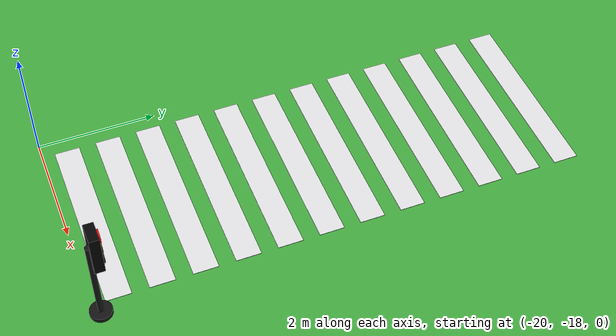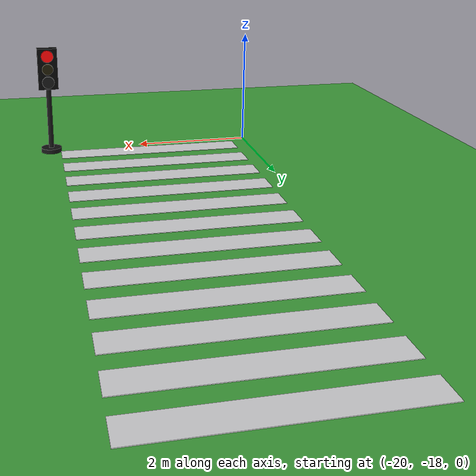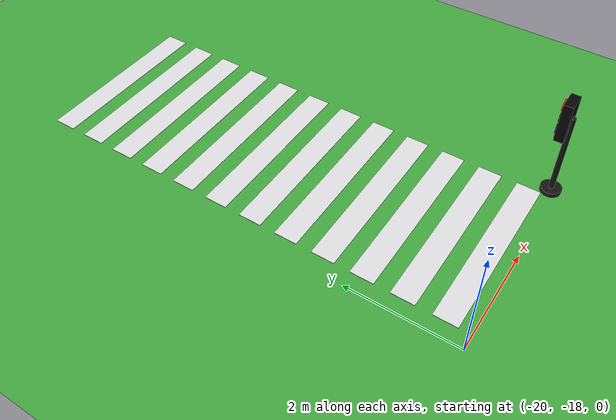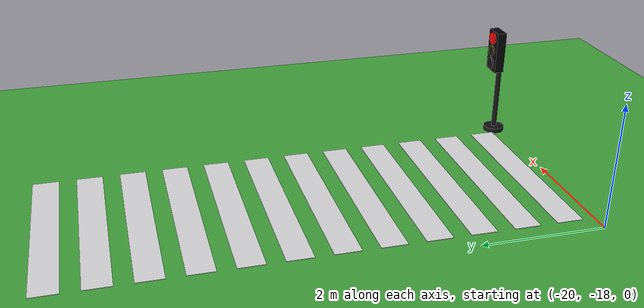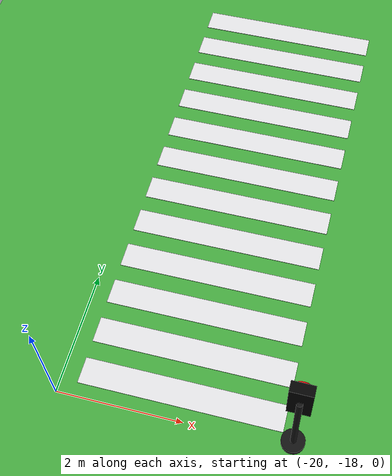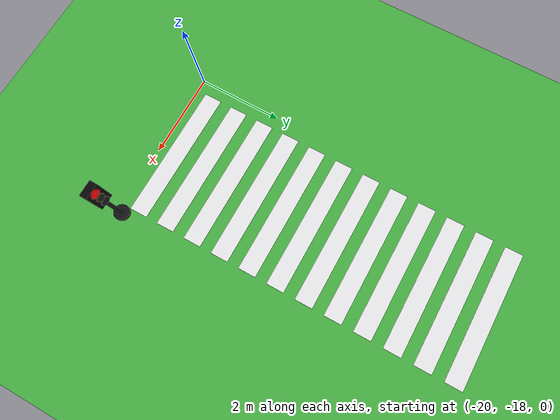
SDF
<sdf version="1.10">
 <world name="city_second">
  <model name="ground_plane">
   <static>true</static>
   <link name="link">
    <collision name="collision">
     <geometry><plane><normal>0 0 1</normal><size>300 300</size></plane></geometry>
    </collision>
    <visual name="visual">
     <geometry><plane><normal>0 0 1</normal><size>300 300</size></plane></geometry>
     <material>
      <ambient>0.280000001 0.689999998 0.25999999 1</ambient>
      <diffuse>0.280000001 0.689999998 0.25999999 1</diffuse>
      <specular>0.0299999993 0.0299999993 0.0299999993 1</specular>
     </material>
    </visual>
    <inertial>
     <mass>1</mass>
     <inertia><ixx>1</ixx><ixy>0</ixy><ixz>0</ixz><iyy>1</iyy><iyz>0</iyz><izz>1</izz></inertia>
    </inertial>
   </link>
  </model>
  <model name="crosswalk_v_2_1_east_5_6">
   <static>true</static>
   <pose>-18.1281 -13.730500000000001 0.017000000000000001 0 0 0</pose>
   <link name="stripe_1">
    <collision name="collision">
     <geometry><box><size>3.2000000000000002 0.41999999999999998 0.01</size></box></geometry>
    </collision>
    <visual name="visual">
     <geometry><box><size>3.2000000000000002 0.41999999999999998 0.01</size></box></geometry>
     <material>
      <ambient>0.920000017 0.920000017 0.930000007 1</ambient>
      <diffuse>0.920000017 0.920000017 0.930000007 1</diffuse>
      <specular>0.0299999993 0.0299999993 0.0299999993 1</specular>
     </material>
    </visual>
    <pose>0 -3.8500000000000001 0 0 0 0</pose>
    <inertial>
     <mass>1</mass>
     <inertia><ixx>1</ixx><ixy>0</ixy><ixz>0</ixz><iyy>1</iyy><iyz>0</iyz><izz>1</izz></inertia>
    </inertial>
   </link>
   <link name="stripe_2">
    <collision name="collision">
     <geometry><box><size>3.2000000000000002 0.41999999999999998 0.01</size></box></geometry>
    </collision>
    <visual name="visual">
     <geometry><box><size>3.2000000000000002 0.41999999999999998 0.01</size></box></geometry>
     <material>
      <ambient>0.920000017 0.920000017 0.930000007 1</ambient>
      <diffuse>0.920000017 0.920000017 0.930000007 1</diffuse>
      <specular>0.0299999993 0.0299999993 0.0299999993 1</specular>
     </material>
    </visual>
    <pose>0 -3.1499999999999968 0 0 0 0</pose>
    <inertial>
     <mass>1</mass>
     <inertia><ixx>1</ixx><ixy>0</ixy><ixz>0</ixz><iyy>1</iyy><iyz>0</iyz><izz>1</izz></inertia>
    </inertial>
   </link>
   <link name="stripe_3">
    <collision name="collision">
     <geometry><box><size>3.2000000000000002 0.41999999999999998 0.01</size></box></geometry>
    </collision>
    <visual name="visual">
     <geometry><box><size>3.2000000000000002 0.41999999999999998 0.01</size></box></geometry>
     <material>
      <ambient>0.920000017 0.920000017 0.930000007 1</ambient>
      <diffuse>0.920000017 0.920000017 0.930000007 1</diffuse>
      <specular>0.0299999993 0.0299999993 0.0299999993 1</specular>
     </material>
    </visual>
    <pose>0 -2.4499999999999975 0 0 0 0</pose>
    <inertial>
     <mass>1</mass>
     <inertia><ixx>1</ixx><ixy>0</ixy><ixz>0</ixz><iyy>1</iyy><iyz>0</iyz><izz>1</izz></inertia>
    </inertial>
   </link>
   <link name="stripe_4">
    <collision name="collision">
     <geometry><box><size>3.2000000000000002 0.41999999999999998 0.01</size></box></geometry>
    </collision>
    <visual name="visual">
     <geometry><box><size>3.2000000000000002 0.41999999999999998 0.01</size></box></geometry>
     <material>
      <ambient>0.920000017 0.920000017 0.930000007 1</ambient>
      <diffuse>0.920000017 0.920000017 0.930000007 1</diffuse>
      <specular>0.0299999993 0.0299999993 0.0299999993 1</specular>
     </material>
    </visual>
    <pose>0 -1.7499999999999982 0 0 0 0</pose>
    <inertial>
     <mass>1</mass>
     <inertia><ixx>1</ixx><ixy>0</ixy><ixz>0</ixz><iyy>1</iyy><iyz>0</iyz><izz>1</izz></inertia>
    </inertial>
   </link>
   <link name="stripe_5">
    <collision name="collision">
     <geometry><box><size>3.2000000000000002 0.41999999999999998 0.01</size></box></geometry>
    </collision>
    <visual name="visual">
     <geometry><box><size>3.2000000000000002 0.41999999999999998 0.01</size></box></geometry>
     <material>
      <ambient>0.920000017 0.920000017 0.930000007 1</ambient>
      <diffuse>0.920000017 0.920000017 0.930000007 1</diffuse>
      <specular>0.0299999993 0.0299999993 0.0299999993 1</specular>
     </material>
    </visual>
    <pose>0 -1.0499999999999989 0 0 0 0</pose>
    <inertial>
     <mass>1</mass>
     <inertia><ixx>1</ixx><ixy>0</ixy><ixz>0</ixz><iyy>1</iyy><iyz>0</iyz><izz>1</izz></inertia>
    </inertial>
   </link>
   <link name="stripe_6">
    <collision name="collision">
     <geometry><box><size>3.2000000000000002 0.41999999999999998 0.01</size></box></geometry>
    </collision>
    <visual name="visual">
     <geometry><box><size>3.2000000000000002 0.41999999999999998 0.01</size></box></geometry>
     <material>
      <ambient>0.920000017 0.920000017 0.930000007 1</ambient>
      <diffuse>0.920000017 0.920000017 0.930000007 1</diffuse>
      <specular>0.0299999993 0.0299999993 0.0299999993 1</specular>
     </material>
    </visual>
    <pose>0 -0.34999999999999787 0 0 0 0</pose>
    <inertial>
     <mass>1</mass>
     <inertia><ixx>1</ixx><ixy>0</ixy><ixz>0</ixz><iyy>1</iyy><iyz>0</iyz><izz>1</izz></inertia>
    </inertial>
   </link>
   <link name="stripe_7">
    <collision name="collision">
     <geometry><box><size>3.2000000000000002 0.41999999999999998 0.01</size></box></geometry>
    </collision>
    <visual name="visual">
     <geometry><box><size>3.2000000000000002 0.41999999999999998 0.01</size></box></geometry>
     <material>
      <ambient>0.920000017 0.920000017 0.930000007 1</ambient>
      <diffuse>0.920000017 0.920000017 0.930000007 1</diffuse>
      <specular>0.0299999993 0.0299999993 0.0299999993 1</specular>
     </material>
    </visual>
    <pose>0 0.35000000000000142 0 0 0 0</pose>
    <inertial>
     <mass>1</mass>
     <inertia><ixx>1</ixx><ixy>0</ixy><ixz>0</ixz><iyy>1</iyy><iyz>0</iyz><izz>1</izz></inertia>
    </inertial>
   </link>
   <link name="stripe_8">
    <collision name="collision">
     <geometry><box><size>3.2000000000000002 0.41999999999999998 0.01</size></box></geometry>
    </collision>
    <visual name="visual">
     <geometry><box><size>3.2000000000000002 0.41999999999999998 0.01</size></box></geometry>
     <material>
      <ambient>0.920000017 0.920000017 0.930000007 1</ambient>
      <diffuse>0.920000017 0.920000017 0.930000007 1</diffuse>
      <specular>0.0299999993 0.0299999993 0.0299999993 1</specular>
     </material>
    </visual>
    <pose>0 1.0500000000000025 0 0 0 0</pose>
    <inertial>
     <mass>1</mass>
     <inertia><ixx>1</ixx><ixy>0</ixy><ixz>0</ixz><iyy>1</iyy><iyz>0</iyz><izz>1</izz></inertia>
    </inertial>
   </link>
   <link name="stripe_9">
    <collision name="collision">
     <geometry><box><size>3.2000000000000002 0.41999999999999998 0.01</size></box></geometry>
    </collision>
    <visual name="visual">
     <geometry><box><size>3.2000000000000002 0.41999999999999998 0.01</size></box></geometry>
     <material>
      <ambient>0.920000017 0.920000017 0.930000007 1</ambient>
      <diffuse>0.920000017 0.920000017 0.930000007 1</diffuse>
      <specular>0.0299999993 0.0299999993 0.0299999993 1</specular>
     </material>
    </visual>
    <pose>0 1.7500000000000018 0 0 0 0</pose>
    <inertial>
     <mass>1</mass>
     <inertia><ixx>1</ixx><ixy>0</ixy><ixz>0</ixz><iyy>1</iyy><iyz>0</iyz><izz>1</izz></inertia>
    </inertial>
   </link>
   <link name="stripe_10">
    <collision name="collision">
     <geometry><box><size>3.2000000000000002 0.41999999999999998 0.01</size></box></geometry>
    </collision>
    <visual name="visual">
     <geometry><box><size>3.2000000000000002 0.41999999999999998 0.01</size></box></geometry>
     <material>
      <ambient>0.920000017 0.920000017 0.930000007 1</ambient>
      <diffuse>0.920000017 0.920000017 0.930000007 1</diffuse>
      <specular>0.0299999993 0.0299999993 0.0299999993 1</specular>
     </material>
    </visual>
    <pose>0 2.4500000000000011 0 0 0 0</pose>
    <inertial>
     <mass>1</mass>
     <inertia><ixx>1</ixx><ixy>0</ixy><ixz>0</ixz><iyy>1</iyy><iyz>0</iyz><izz>1</izz></inertia>
    </inertial>
   </link>
   <link name="stripe_11">
    <collision name="collision">
     <geometry><box><size>3.2000000000000002 0.41999999999999998 0.01</size></box></geometry>
    </collision>
    <visual name="visual">
     <geometry><box><size>3.2000000000000002 0.41999999999999998 0.01</size></box></geometry>
     <material>
      <ambient>0.920000017 0.920000017 0.930000007 1</ambient>
      <diffuse>0.920000017 0.920000017 0.930000007 1</diffuse>
      <specular>0.0299999993 0.0299999993 0.0299999993 1</specular>
     </material>
    </visual>
    <pose>0 3.1500000000000021 0 0 0 0</pose>
    <inertial>
     <mass>1</mass>
     <inertia><ixx>1</ixx><ixy>0</ixy><ixz>0</ixz><iyy>1</iyy><iyz>0</iyz><izz>1</izz></inertia>
    </inertial>
   </link>
   <link name="stripe_12">
    <collision name="collision">
     <geometry><box><size>3.2000000000000002 0.41999999999999998 0.01</size></box></geometry>
    </collision>
    <visual name="visual">
     <geometry><box><size>3.2000000000000002 0.41999999999999998 0.01</size></box></geometry>
     <material>
      <ambient>0.920000017 0.920000017 0.930000007 1</ambient>
      <diffuse>0.920000017 0.920000017 0.930000007 1</diffuse>
      <specular>0.0299999993 0.0299999993 0.0299999993 1</specular>
     </material>
    </visual>
    <pose>0 3.8500000000000014 0 0 0 0</pose>
    <inertial>
     <mass>1</mass>
     <inertia><ixx>1</ixx><ixy>0</ixy><ixz>0</ixz><iyy>1</iyy><iyz>0</iyz><izz>1</izz></inertia>
    </inertial>
   </link>
  </model>
  <model name="simple_traffic_light_red_north_1">
   <static>true</static>
   <pose>-16.361301882303856 -17.892128779718455 0 0 0 0</pose>
   <link name="base">
    <pose>0 0 0.040000000000000001 0 0 0</pose>
    <collision name="collision">
     <geometry>
      <cylinder><radius>0.17999999999999999</radius><length>0.080000000000000002</length></cylinder>
     </geometry>
    </collision>
    <visual name="visual">
     <geometry>
      <cylinder><radius>0.17999999999999999</radius><length>0.080000000000000002</length></cylinder>
     </geometry>
     <material>
      <ambient>0.0799999982 0.0799999982 0.0799999982 1</ambient>
      <diffuse>0.0799999982 0.0799999982 0.0799999982 1</diffuse>
      <specular>0.150000006 0.150000006 0.150000006 1</specular>
      <emissive>0 0 0 1</emissive>
     </material>
    </visual>
    <inertial>
     <mass>1</mass>
     <inertia><ixx>1</ixx><ixy>0</ixy><ixz>0</ixz><iyy>1</iyy><iyz>0</iyz><izz>1</izz></inertia>
    </inertial>
   </link>
   <link name="pole">
    <pose>0 0 0.80000000000000004 0 0 0</pose>
    <collision name="collision">
     <geometry>
      <cylinder><radius>0.044999999999999998</radius><length>1.6000000000000001</length></cylinder>
     </geometry>
    </collision>
    <visual name="visual">
     <geometry>
      <cylinder><radius>0.044999999999999998</radius><length>1.6000000000000001</length></cylinder>
     </geometry>
     <material>
      <ambient>0.0799999982 0.0799999982 0.0799999982 1</ambient>
      <diffuse>0.0799999982 0.0799999982 0.0799999982 1</diffuse>
      <specular>0.150000006 0.150000006 0.150000006 1</specular>
      <emissive>0 0 0 1</emissive>
     </material>
    </visual>
    <inertial>
     <mass>1</mass>
     <inertia><ixx>1</ixx><ixy>0</ixy><ixz>0</ixz><iyy>1</iyy><iyz>0</iyz><izz>1</izz></inertia>
    </inertial>
   </link>
   <link name="signal_box">
    <pose>0 0.090000000000003411 1.55 0 0 0</pose>
    <collision name="collision">
     <geometry><box><size>0.34000000000000002 0.16 0.71999999999999997</size></box></geometry>
    </collision>
    <visual name="visual">
     <geometry><box><size>0.34000000000000002 0.16 0.71999999999999997</size></box></geometry>
     <material>
      <ambient>0.0199999996 0.0199999996 0.0199999996 1</ambient>
      <diffuse>0.0199999996 0.0199999996 0.0199999996 1</diffuse>
      <specular>0.150000006 0.150000006 0.150000006 1</specular>
      <emissive>0 0 0 1</emissive>
     </material>
    </visual>
    <inertial>
     <mass>1</mass>
     <inertia><ixx>1</ixx><ixy>0</ixy><ixz>0</ixz><iyy>1</iyy><iyz>0</iyz><izz>1</izz></inertia>
    </inertial>
   </link>
   <link name="red_lens">
    <pose>0 0.18099999999999739 1.78 1.5707963268000003 0 0</pose>
    <collision name="collision">
     <geometry><cylinder><radius>0.105</radius><length>0.035000000000000003</length></cylinder></geometry>
    </collision>
    <visual name="visual">
     <geometry><cylinder><radius>0.105</radius><length>0.035000000000000003</length></cylinder></geometry>
     <material>
      <ambient>1 0.0199999996 0.0199999996 1</ambient>
      <diffuse>1 0.0199999996 0.0199999996 1</diffuse>
      <specular>0.150000006 0.150000006 0.150000006 1</specular>
      <emissive>1 0.0199999996 0.0199999996 1</emissive>
     </material>
    </visual>
    <inertial>
     <mass>1</mass>
     <inertia><ixx>1</ixx><ixy>0</ixy><ixz>0</ixz><iyy>1</iyy><iyz>0</iyz><izz>1</izz></inertia>
    </inertial>
   </link>
   <link name="yellow_lens">
    <pose>0 0.18200000000000216 1.55 1.5707963268000003 0 0</pose>
    <collision name="collision">
     <geometry>
      <cylinder><radius>0.095000000000000001</radius><length>0.035000000000000003</length></cylinder>
     </geometry>
    </collision>
    <visual name="visual">
     <geometry>
      <cylinder><radius>0.095000000000000001</radius><length>0.035000000000000003</length></cylinder>
     </geometry>
     <material>
      <ambient>0.119999997 0.100000001 0.0199999996 1</ambient>
      <diffuse>0.119999997 0.100000001 0.0199999996 1</diffuse>
      <specular>0.150000006 0.150000006 0.150000006 1</specular>
      <emissive>0 0 0 1</emissive>
     </material>
    </visual>
    <inertial>
     <mass>1</mass>
     <inertia><ixx>1</ixx><ixy>0</ixy><ixz>0</ixz><iyy>1</iyy><iyz>0</iyz><izz>1</izz></inertia>
    </inertial>
   </link>
   <link name="green_lens">
    <pose>0 0.18299999999999983 1.3200000000000001 1.5707963268000003 0 0</pose>
    <collision name="collision">
     <geometry><cylinder><radius>0.105</radius><length>0.035000000000000003</length></cylinder></geometry>
    </collision>
    <visual name="visual">
     <geometry><cylinder><radius>0.105</radius><length>0.035000000000000003</length></cylinder></geometry>
     <material>
      <ambient>0.0799999982 0.0799999982 0.0799999982 1</ambient>
      <diffuse>0.0799999982 0.0799999982 0.0799999982 1</diffuse>
      <specular>0.150000006 0.150000006 0.150000006 1</specular>
      <emissive>0 0 0 1</emissive>
     </material>
    </visual>
    <inertial>
     <mass>1</mass>
     <inertia><ixx>1</ixx><ixy>0</ixy><ixz>0</ixz><iyy>1</iyy><iyz>0</iyz><izz>1</izz></inertia>
    </inertial>
   </link>
  </model>
 </world>
</sdf>
